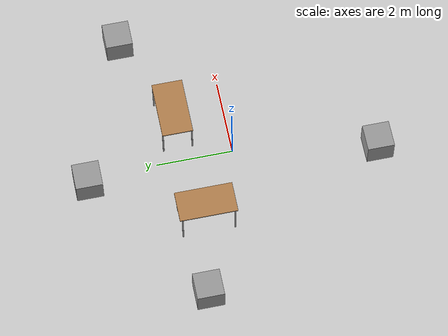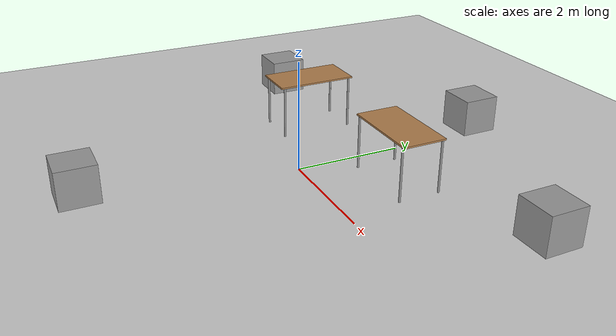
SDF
<sdf version="1.7">
 <world name="default">
  <model name="ground_plane">
   <static>1</static>
   <link name="link">
    <collision name="collision">
     <geometry><plane><normal>0 0 1</normal><size>100 100</size></plane></geometry>
     <surface><friction><ode><mu>100</mu><mu2>50</mu2></ode></friction></surface>
    </collision>
    <visual name="visual">
     <cast_shadows>0</cast_shadows>
     <geometry><plane><normal>0 0 1</normal><size>100 100</size></plane></geometry>
     <material>
      <script><uri>file://media/materials/scripts/gazebo.material</uri><name>Gazebo/Grey</name></script>
     </material>
    </visual>
   </link>
  </model>
  <model name="compile_office_boxes2">
   <link name="link_4">
    <inertial>
     <mass>20</mass>
     <inertia><ixx>3.33333</ixx><ixy>0</ixy><ixz>0</ixz><iyy>3.33333</iyy><iyz>0</iyz><izz>3.33333</izz></inertia>
    </inertial>
    <pose>-3.5202 0.616555 0 0 -0 0</pose>
    <visual name="visual">
     <geometry><box><size>0.7 0.7 0.7</size></box></geometry>
     <material>
      <lighting>1</lighting>
      <script><uri>file://media/materials/scripts/gazebo.material</uri><name>Gazebo/Grey</name></script>
      <shader type="pixel"><normal_map>__default__</normal_map></shader>
      <ambient>0.3 0.3 0.3 1</ambient>
      <diffuse>0.7 0.7 0.7 1</diffuse>
      <specular>0.01 0.01 0.01 1</specular>
      <emissive>0 0 0 1</emissive>
     </material>
    </visual>
    <collision name="collision">
     <geometry><box><size>0.7 0.7 0.7</size></box></geometry>
     <surface>
      <friction>
       <ode><mu>1</mu><mu2>1</mu2><fdir1>0 0 0</fdir1><slip1>0</slip1><slip2>0</slip2></ode>
       <torsional>
        <coefficient>1</coefficient>
        <patch_radius>0</patch_radius>
        <surface_radius>0</surface_radius>
        <use_patch_radius>1</use_patch_radius>
        <ode><slip>0</slip></ode>
       </torsional>
      </friction>
      <bounce><restitution_coefficient>0</restitution_coefficient><threshold>1e+06</threshold></bounce>
      <contact>
       <collide_without_contact>0</collide_without_contact>
       <collide_without_contact_bitmask>1</collide_without_contact_bitmask>
       <collide_bitmask>1</collide_bitmask>
       <ode>
        <soft_cfm>0</soft_cfm>
        <soft_erp>0.2</soft_erp>
        <kp>1e+13</kp>
        <kd>1</kd>
        <max_vel>0.01</max_vel>
        <min_depth>0</min_depth>
       </ode>
       <bullet>
        <split_impulse>1</split_impulse>
        <split_impulse_penetration_threshold>-0.01</split_impulse_penetration_threshold>
        <soft_cfm>0</soft_cfm>
        <soft_erp>0.2</soft_erp>
        <kp>1e+13</kp>
        <kd>1</kd>
       </bullet>
      </contact>
     </surface>
    </collision>
   </link>
   <link name="link_4_clone_0">
    <inertial>
     <mass>20</mass>
     <inertia><ixx>3.33333</ixx><ixy>0</ixy><ixz>0</ixz><iyy>3.33333</iyy><iyz>0</iyz><izz>3.33333</izz></inertia>
    </inertial>
    <pose>-0.335113 -4.50198 0 0 -0 0</pose>
    <visual name="visual">
     <geometry><box><size>0.7 0.7 0.7</size></box></geometry>
     <material>
      <lighting>1</lighting>
      <script><uri>file://media/materials/scripts/gazebo.material</uri><name>Gazebo/Grey</name></script>
      <shader type="pixel"><normal_map>__default__</normal_map></shader>
      <ambient>0.3 0.3 0.3 1</ambient>
      <diffuse>0.7 0.7 0.7 1</diffuse>
      <specular>0.01 0.01 0.01 1</specular>
      <emissive>0 0 0 1</emissive>
     </material>
    </visual>
    <collision name="collision">
     <geometry><box><size>0.7 0.7 0.7</size></box></geometry>
     <surface>
      <friction>
       <ode><mu>1</mu><mu2>1</mu2><fdir1>0 0 0</fdir1><slip1>0</slip1><slip2>0</slip2></ode>
       <torsional>
        <coefficient>1</coefficient>
        <patch_radius>0</patch_radius>
        <surface_radius>0</surface_radius>
        <use_patch_radius>1</use_patch_radius>
        <ode><slip>0</slip></ode>
       </torsional>
      </friction>
      <bounce><restitution_coefficient>0</restitution_coefficient><threshold>1e+06</threshold></bounce>
      <contact>
       <collide_without_contact>0</collide_without_contact>
       <collide_without_contact_bitmask>1</collide_without_contact_bitmask>
       <collide_bitmask>1</collide_bitmask>
       <ode>
        <soft_cfm>0</soft_cfm>
        <soft_erp>0.2</soft_erp>
        <kp>1e+13</kp>
        <kd>1</kd>
        <max_vel>0.01</max_vel>
        <min_depth>0</min_depth>
       </ode>
       <bullet>
        <split_impulse>1</split_impulse>
        <split_impulse_penetration_threshold>-0.01</split_impulse_penetration_threshold>
        <soft_cfm>0</soft_cfm>
        <soft_erp>0.2</soft_erp>
        <kp>1e+13</kp>
        <kd>1</kd>
       </bullet>
      </contact>
     </surface>
    </collision>
   </link>
   <link name="link_4_clone_1">
    <inertial>
     <mass>20</mass>
     <inertia><ixx>3.33333</ixx><ixy>0</ixy><ixz>0</ixz><iyy>3.33333</iyy><iyz>0</iyz><izz>3.33333</izz></inertia>
    </inertial>
    <pose>3.95495 1.57201 -0 0 -0 0</pose>
    <visual name="visual">
     <geometry><box><size>0.7 0.7 0.7</size></box></geometry>
     <material>
      <lighting>1</lighting>
      <script><uri>file://media/materials/scripts/gazebo.material</uri><name>Gazebo/Grey</name></script>
      <shader type="pixel"><normal_map>__default__</normal_map></shader>
      <ambient>0.3 0.3 0.3 1</ambient>
      <diffuse>0.7 0.7 0.7 1</diffuse>
      <specular>0.01 0.01 0.01 1</specular>
      <emissive>0 0 0 1</emissive>
     </material>
    </visual>
    <collision name="collision">
     <geometry><box><size>0.7 0.7 0.7</size></box></geometry>
     <surface>
      <friction>
       <ode><mu>1</mu><mu2>1</mu2><fdir1>0 0 0</fdir1><slip1>0</slip1><slip2>0</slip2></ode>
       <torsional>
        <coefficient>1</coefficient>
        <patch_radius>0</patch_radius>
        <surface_radius>0</surface_radius>
        <use_patch_radius>1</use_patch_radius>
        <ode><slip>0</slip></ode>
       </torsional>
      </friction>
      <bounce><restitution_coefficient>0</restitution_coefficient><threshold>1e+06</threshold></bounce>
      <contact>
       <collide_without_contact>0</collide_without_contact>
       <collide_without_contact_bitmask>1</collide_without_contact_bitmask>
       <collide_bitmask>1</collide_bitmask>
       <ode>
        <soft_cfm>0</soft_cfm>
        <soft_erp>0.2</soft_erp>
        <kp>1e+13</kp>
        <kd>1</kd>
        <max_vel>0.01</max_vel>
        <min_depth>0</min_depth>
       </ode>
       <bullet>
        <split_impulse>1</split_impulse>
        <split_impulse_penetration_threshold>-0.01</split_impulse_penetration_threshold>
        <soft_cfm>0</soft_cfm>
        <soft_erp>0.2</soft_erp>
        <kp>1e+13</kp>
        <kd>1</kd>
       </bullet>
      </contact>
     </surface>
    </collision>
   </link>
   <link name="link_4_clone_2">
    <inertial>
     <mass>20</mass>
     <inertia><ixx>3.33333</ixx><ixy>0</ixy><ixz>0</ixz><iyy>3.33333</iyy><iyz>0</iyz><izz>3.33333</izz></inertia>
    </inertial>
    <pose>0.076582 3.06701 -0 0 -0 0</pose>
    <visual name="visual">
     <geometry><box><size>0.7 0.7 0.7</size></box></geometry>
     <material>
      <lighting>1</lighting>
      <script><uri>file://media/materials/scripts/gazebo.material</uri><name>Gazebo/Grey</name></script>
      <shader type="pixel"><normal_map>__default__</normal_map></shader>
      <ambient>0.3 0.3 0.3 1</ambient>
      <diffuse>0.7 0.7 0.7 1</diffuse>
      <specular>0.01 0.01 0.01 1</specular>
      <emissive>0 0 0 1</emissive>
     </material>
    </visual>
    <collision name="collision">
     <geometry><box><size>0.7 0.7 0.7</size></box></geometry>
     <surface>
      <friction>
       <ode><mu>1</mu><mu2>1</mu2><fdir1>0 0 0</fdir1><slip1>0</slip1><slip2>0</slip2></ode>
       <torsional>
        <coefficient>1</coefficient>
        <patch_radius>0</patch_radius>
        <surface_radius>0</surface_radius>
        <use_patch_radius>1</use_patch_radius>
        <ode><slip>0</slip></ode>
       </torsional>
      </friction>
      <bounce><restitution_coefficient>0</restitution_coefficient><threshold>1e+06</threshold></bounce>
      <contact>
       <collide_without_contact>0</collide_without_contact>
       <collide_without_contact_bitmask>1</collide_without_contact_bitmask>
       <collide_bitmask>1</collide_bitmask>
       <ode>
        <soft_cfm>0</soft_cfm>
        <soft_erp>0.2</soft_erp>
        <kp>1e+13</kp>
        <kd>1</kd>
        <max_vel>0.01</max_vel>
        <min_depth>0</min_depth>
       </ode>
       <bullet>
        <split_impulse>1</split_impulse>
        <split_impulse_penetration_threshold>-0.01</split_impulse_penetration_threshold>
        <soft_cfm>0</soft_cfm>
        <soft_erp>0.2</soft_erp>
        <kp>1e+13</kp>
        <kd>1</kd>
       </bullet>
      </contact>
     </surface>
    </collision>
   </link>
   <static>0</static>
   <pose>-0.31706 0.779915 0.35 0 -0 0</pose>
  </model>
  <model name="table">
   <static>1</static>
   <link name="link">
    <collision name="surface">
     <pose>0 0 1 0 -0 0</pose>
     <geometry><box><size>1.5 0.8 0.03</size></box></geometry>
     <surface><friction><ode><mu>0.6</mu><mu2>0.6</mu2></ode></friction></surface>
    </collision>
    <visual name="visual1">
     <pose>0 0 1 0 -0 0</pose>
     <geometry><box><size>1.5 0.8 0.03</size></box></geometry>
     <material>
      <script><uri>file://media/materials/scripts/gazebo.material</uri><name>Gazebo/Wood</name></script>
     </material>
    </visual>
    <collision name="front_left_leg">
     <pose>0.68 0.38 0.5 0 -0 0</pose>
     <geometry><cylinder><radius>0.02</radius><length>1</length></cylinder></geometry>
    </collision>
    <visual name="front_left_leg">
     <pose>0.68 0.38 0.5 0 -0 0</pose>
     <geometry><cylinder><radius>0.02</radius><length>1</length></cylinder></geometry>
     <material>
      <script><uri>file://media/materials/scripts/gazebo.material</uri><name>Gazebo/Grey</name></script>
     </material>
    </visual>
    <collision name="front_right_leg">
     <pose>0.68 -0.38 0.5 0 -0 0</pose>
     <geometry><cylinder><radius>0.02</radius><length>1</length></cylinder></geometry>
    </collision>
    <visual name="front_right_leg">
     <pose>0.68 -0.38 0.5 0 -0 0</pose>
     <geometry><cylinder><radius>0.02</radius><length>1</length></cylinder></geometry>
     <material>
      <script><uri>file://media/materials/scripts/gazebo.material</uri><name>Gazebo/Grey</name></script>
     </material>
    </visual>
    <collision name="back_right_leg">
     <pose>-0.68 -0.38 0.5 0 -0 0</pose>
     <geometry><cylinder><radius>0.02</radius><length>1</length></cylinder></geometry>
    </collision>
    <visual name="back_right_leg">
     <pose>-0.68 -0.38 0.5 0 -0 0</pose>
     <geometry><cylinder><radius>0.02</radius><length>1</length></cylinder></geometry>
     <material>
      <script><uri>file://media/materials/scripts/gazebo.material</uri><name>Gazebo/Grey</name></script>
     </material>
    </visual>
    <collision name="back_left_leg">
     <pose>-0.68 0.38 0.5 0 -0 0</pose>
     <geometry><cylinder><radius>0.02</radius><length>1</length></cylinder></geometry>
    </collision>
    <visual name="back_left_leg">
     <pose>-0.68 0.38 0.5 0 -0 0</pose>
     <geometry><cylinder><radius>0.02</radius><length>1</length></cylinder></geometry>
     <material>
      <script><uri>file://media/materials/scripts/gazebo.material</uri><name>Gazebo/Grey</name></script>
     </material>
    </visual>
   </link>
   <pose>1.05226 1.36414 0 0 -0 0</pose>
  </model>
  <model name="table_1">
   <link name="link">
    <pose>-0.5 0.5 0 0 -0 1.57</pose>
    <inertial>
     <mass>1</mass>
     <inertia><ixx>1</ixx><ixy>0</ixy><ixz>0</ixz><iyy>1</iyy><iyz>0</iyz><izz>1</izz></inertia>
    </inertial>
    <visual name="visual1">
     <pose>0 0 1 0 -0 0</pose>
     <geometry><box><size>1.5 0.8 0.03</size></box></geometry>
     <material>
      <script><uri>file://media/materials/scripts/gazebo.material</uri><name>Gazebo/Wood</name></script>
      <shader type="pixel"><normal_map>__default__</normal_map></shader>
      <ambient>1 1 1 1</ambient>
      <diffuse>1 1 1 1</diffuse>
      <specular>0.2 0.2 0.2 1</specular>
      <emissive>0 0 0 1</emissive>
     </material>
    </visual>
    <visual name="front_left_leg">
     <pose>0.68 0.38 0.5 0 -0 0</pose>
     <geometry><cylinder><radius>0.02</radius><length>1</length></cylinder></geometry>
     <material>
      <script><uri>file://media/materials/scripts/gazebo.material</uri><name>Gazebo/Grey</name></script>
      <shader type="pixel"><normal_map>__default__</normal_map></shader>
      <ambient>0.3 0.3 0.3 1</ambient>
      <diffuse>0.7 0.7 0.7 1</diffuse>
      <specular>0.01 0.01 0.01 1</specular>
      <emissive>0 0 0 1</emissive>
     </material>
    </visual>
    <visual name="front_right_leg">
     <pose>0.68 -0.38 0.5 0 -0 0</pose>
     <geometry><cylinder><radius>0.02</radius><length>1</length></cylinder></geometry>
     <material>
      <script><uri>file://media/materials/scripts/gazebo.material</uri><name>Gazebo/Grey</name></script>
      <shader type="pixel"><normal_map>__default__</normal_map></shader>
      <ambient>0.3 0.3 0.3 1</ambient>
      <diffuse>0.7 0.7 0.7 1</diffuse>
      <specular>0.01 0.01 0.01 1</specular>
      <emissive>0 0 0 1</emissive>
     </material>
    </visual>
    <visual name="back_right_leg">
     <pose>-0.68 -0.38 0.5 0 -0 0</pose>
     <geometry><cylinder><radius>0.02</radius><length>1</length></cylinder></geometry>
     <material>
      <script><uri>file://media/materials/scripts/gazebo.material</uri><name>Gazebo/Grey</name></script>
      <shader type="pixel"><normal_map>__default__</normal_map></shader>
      <ambient>0.3 0.3 0.3 1</ambient>
      <diffuse>0.7 0.7 0.7 1</diffuse>
      <specular>0.01 0.01 0.01 1</specular>
      <emissive>0 0 0 1</emissive>
     </material>
    </visual>
    <visual name="back_left_leg">
     <pose>-0.68 0.38 0.5 0 -0 0</pose>
     <geometry><cylinder><radius>0.02</radius><length>1</length></cylinder></geometry>
     <material>
      <script><uri>file://media/materials/scripts/gazebo.material</uri><name>Gazebo/Grey</name></script>
      <shader type="pixel"><normal_map>__default__</normal_map></shader>
      <ambient>0.3 0.3 0.3 1</ambient>
      <diffuse>0.7 0.7 0.7 1</diffuse>
      <specular>0.01 0.01 0.01 1</specular>
      <emissive>0 0 0 1</emissive>
     </material>
    </visual>
    <collision name="surface">
     <pose>0 0 1 0 -0 0</pose>
     <geometry><box><size>1.5 0.8 0.03</size></box></geometry>
     <surface>
      <friction>
       <ode><mu>0.6</mu><mu2>0.6</mu2><fdir1>0 0 0</fdir1><slip1>0</slip1><slip2>0</slip2></ode>
       <torsional>
        <coefficient>1</coefficient>
        <patch_radius>0</patch_radius>
        <surface_radius>0</surface_radius>
        <use_patch_radius>1</use_patch_radius>
        <ode><slip>0</slip></ode>
       </torsional>
      </friction>
      <bounce><restitution_coefficient>0</restitution_coefficient><threshold>1e+06</threshold></bounce>
      <contact>
       <collide_without_contact>0</collide_without_contact>
       <collide_without_contact_bitmask>1</collide_without_contact_bitmask>
       <collide_bitmask>1</collide_bitmask>
       <ode>
        <soft_cfm>0</soft_cfm>
        <soft_erp>0.2</soft_erp>
        <kp>1e+13</kp>
        <kd>1</kd>
        <max_vel>0.01</max_vel>
        <min_depth>0</min_depth>
       </ode>
       <bullet>
        <split_impulse>1</split_impulse>
        <split_impulse_penetration_threshold>-0.01</split_impulse_penetration_threshold>
        <soft_cfm>0</soft_cfm>
        <soft_erp>0.2</soft_erp>
        <kp>1e+13</kp>
        <kd>1</kd>
       </bullet>
      </contact>
     </surface>
    </collision>
    <collision name="front_left_leg">
     <pose>0.68 0.38 0.5 0 -0 0</pose>
     <geometry><cylinder><radius>0.02</radius><length>1</length></cylinder></geometry>
     <surface>
      <friction>
       <ode><mu>1</mu><mu2>1</mu2><fdir1>0 0 0</fdir1><slip1>0</slip1><slip2>0</slip2></ode>
       <torsional>
        <coefficient>1</coefficient>
        <patch_radius>0</patch_radius>
        <surface_radius>0</surface_radius>
        <use_patch_radius>1</use_patch_radius>
        <ode><slip>0</slip></ode>
       </torsional>
      </friction>
      <bounce><restitution_coefficient>0</restitution_coefficient><threshold>1e+06</threshold></bounce>
      <contact>
       <collide_without_contact>0</collide_without_contact>
       <collide_without_contact_bitmask>1</collide_without_contact_bitmask>
       <collide_bitmask>1</collide_bitmask>
       <ode>
        <soft_cfm>0</soft_cfm>
        <soft_erp>0.2</soft_erp>
        <kp>1e+13</kp>
        <kd>1</kd>
        <max_vel>0.01</max_vel>
        <min_depth>0</min_depth>
       </ode>
       <bullet>
        <split_impulse>1</split_impulse>
        <split_impulse_penetration_threshold>-0.01</split_impulse_penetration_threshold>
        <soft_cfm>0</soft_cfm>
        <soft_erp>0.2</soft_erp>
        <kp>1e+13</kp>
        <kd>1</kd>
       </bullet>
      </contact>
     </surface>
    </collision>
    <collision name="front_right_leg">
     <pose>0.68 -0.38 0.5 0 -0 0</pose>
     <geometry><cylinder><radius>0.02</radius><length>1</length></cylinder></geometry>
     <surface>
      <friction>
       <ode><mu>1</mu><mu2>1</mu2><fdir1>0 0 0</fdir1><slip1>0</slip1><slip2>0</slip2></ode>
       <torsional>
        <coefficient>1</coefficient>
        <patch_radius>0</patch_radius>
        <surface_radius>0</surface_radius>
        <use_patch_radius>1</use_patch_radius>
        <ode><slip>0</slip></ode>
       </torsional>
      </friction>
      <bounce><restitution_coefficient>0</restitution_coefficient><threshold>1e+06</threshold></bounce>
      <contact>
       <collide_without_contact>0</collide_without_contact>
       <collide_without_contact_bitmask>1</collide_without_contact_bitmask>
       <collide_bitmask>1</collide_bitmask>
       <ode>
        <soft_cfm>0</soft_cfm>
        <soft_erp>0.2</soft_erp>
        <kp>1e+13</kp>
        <kd>1</kd>
        <max_vel>0.01</max_vel>
        <min_depth>0</min_depth>
       </ode>
       <bullet>
        <split_impulse>1</split_impulse>
        <split_impulse_penetration_threshold>-0.01</split_impulse_penetration_threshold>
        <soft_cfm>0</soft_cfm>
        <soft_erp>0.2</soft_erp>
        <kp>1e+13</kp>
        <kd>1</kd>
       </bullet>
      </contact>
     </surface>
    </collision>
    <collision name="back_right_leg">
     <pose>-0.68 -0.38 0.5 0 -0 0</pose>
     <geometry><cylinder><radius>0.02</radius><length>1</length></cylinder></geometry>
     <surface>
      <friction>
       <ode><mu>1</mu><mu2>1</mu2><fdir1>0 0 0</fdir1><slip1>0</slip1><slip2>0</slip2></ode>
       <torsional>
        <coefficient>1</coefficient>
        <patch_radius>0</patch_radius>
        <surface_radius>0</surface_radius>
        <use_patch_radius>1</use_patch_radius>
        <ode><slip>0</slip></ode>
       </torsional>
      </friction>
      <bounce><restitution_coefficient>0</restitution_coefficient><threshold>1e+06</threshold></bounce>
      <contact>
       <collide_without_contact>0</collide_without_contact>
       <collide_without_contact_bitmask>1</collide_without_contact_bitmask>
       <collide_bitmask>1</collide_bitmask>
       <ode>
        <soft_cfm>0</soft_cfm>
        <soft_erp>0.2</soft_erp>
        <kp>1e+13</kp>
        <kd>1</kd>
        <max_vel>0.01</max_vel>
        <min_depth>0</min_depth>
       </ode>
       <bullet>
        <split_impulse>1</split_impulse>
        <split_impulse_penetration_threshold>-0.01</split_impulse_penetration_threshold>
        <soft_cfm>0</soft_cfm>
        <soft_erp>0.2</soft_erp>
        <kp>1e+13</kp>
        <kd>1</kd>
       </bullet>
      </contact>
     </surface>
    </collision>
    <collision name="back_left_leg">
     <pose>-0.68 0.38 0.5 0 -0 0</pose>
     <geometry><cylinder><radius>0.02</radius><length>1</length></cylinder></geometry>
     <surface>
      <friction>
       <ode><mu>1</mu><mu2>1</mu2><fdir1>0 0 0</fdir1><slip1>0</slip1><slip2>0</slip2></ode>
       <torsional>
        <coefficient>1</coefficient>
        <patch_radius>0</patch_radius>
        <surface_radius>0</surface_radius>
        <use_patch_radius>1</use_patch_radius>
        <ode><slip>0</slip></ode>
       </torsional>
      </friction>
      <bounce><restitution_coefficient>0</restitution_coefficient><threshold>1e+06</threshold></bounce>
      <contact>
       <collide_without_contact>0</collide_without_contact>
       <collide_without_contact_bitmask>1</collide_without_contact_bitmask>
       <collide_bitmask>1</collide_bitmask>
       <ode>
        <soft_cfm>0</soft_cfm>
        <soft_erp>0.2</soft_erp>
        <kp>1e+13</kp>
        <kd>1</kd>
        <max_vel>0.01</max_vel>
        <min_depth>0</min_depth>
       </ode>
       <bullet>
        <split_impulse>1</split_impulse>
        <split_impulse_penetration_threshold>-0.01</split_impulse_penetration_threshold>
        <soft_cfm>0</soft_cfm>
        <soft_erp>0.2</soft_erp>
        <kp>1e+13</kp>
        <kd>1</kd>
       </bullet>
      </contact>
     </surface>
    </collision>
   </link>
   <static>1</static>
   <pose>-1.24395 0.532201 0 0 -0 0</pose>
  </model>
 </world>
</sdf>
